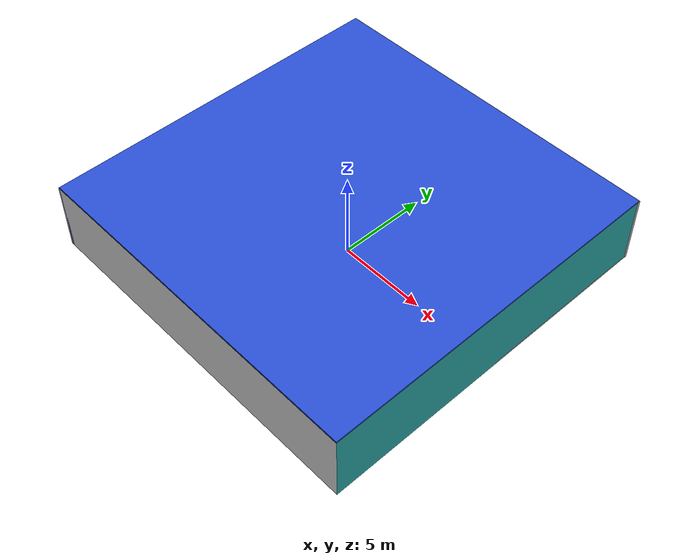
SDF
<sdf version="1.4">
 <world name="default">
  <physics type="ode">
   <max_step_size>0.001</max_step_size>
   <real_time_factor>1</real_time_factor>
   <real_time_update_rate>1000</real_time_update_rate>
   <gravity>0 0 -9.8</gravity>
  </physics>
  <scene><ambient>0.4 0.4 0.4 1</ambient><background>0.7 0.7 0.7 1</background><shadows>1</shadows></scene>
  <model name="Surrounding">
   <static>1</static>
   <link name="Ceiling">
    <collision name="Ceiling_Collision"><geometry><box><size>20 20 0.1</size></box></geometry></collision>
    <visual name="Ceiling_Visual">
     <geometry><box><size>20 20 0.1</size></box></geometry>
     <material>
      <script><uri>file://media/materials/scripts/gazebo.material</uri><name>Gazebo/BlueGlow</name></script>
     </material>
    </visual>
    <pose>0 0 4.05 0 0 0</pose>
   </link>
   <link name="Wall_South">
    <collision name="Wall_South_Collision">
     <geometry><box><size>20 0 4</size></box></geometry>
     <pose>0 0 2 0 -0 0</pose>
    </collision>
    <visual name="Wall_South_Visual">
     <pose>0 0 2 0 -0 0</pose>
     <geometry><box><size>20 0 4</size></box></geometry>
     <material>
      <script><uri>file://media/materials/scripts/gazebo.material</uri><name>Gazebo/WhiteGlow</name></script>
     </material>
    </visual>
    <velocity_decay><linear>0</linear><angular>0</angular></velocity_decay>
    <pose>0 -10 0 0 -0 0</pose>
   </link>
   <link name="Wall_East">
    <collision name="Wall_21_Collision">
     <geometry><box><size>20 0 4</size></box></geometry>
     <pose>0 0 2 0 -0 0</pose>
    </collision>
    <visual name="Wall_21_Visual">
     <pose>0 0 2 0 -0 0</pose>
     <geometry><box><size>20 0 4</size></box></geometry>
     <material>
      <script>
       <uri>file://media/materials/scripts/gazebo.material</uri>
       <name>Gazebo/TurquoiseGlowOutline</name>
      </script>
     </material>
    </visual>
    <velocity_decay><linear>0</linear><angular>0</angular></velocity_decay>
    <pose>10 0 0 0 -0 1.5708</pose>
   </link>
   <link name="Wall_North">
    <collision name="Wall_22_Collision">
     <geometry><box><size>20 0.2 4</size></box></geometry>
     <pose>0 0 2 0 -0 0</pose>
    </collision>
    <visual name="Wall_22_Visual">
     <pose>0 0 2 0 -0 0</pose>
     <geometry><box><size>20 0.2 4</size></box></geometry>
     <material>
      <script><uri>file://media/materials/scripts/gazebo.material</uri><name>Gazebo/LightOn</name></script>
     </material>
    </visual>
    <velocity_decay><linear>0</linear><angular>0</angular></velocity_decay>
    <pose>0 10 0 0 -0 0</pose>
   </link>
   <link name="Wall_West">
    <collision name="Wall_23_Collision">
     <geometry><box><size>20 0.2 4</size></box></geometry>
     <pose>0 0 2 0 -0 0</pose>
    </collision>
    <visual name="Wall_23_Visual">
     <pose>0 0 2 0 -0 0</pose>
     <geometry><box><size>20 0.2 4</size></box></geometry>
     <material>
      <script><uri>file://media/materials/scripts/gazebo.material</uri><name>Gazebo/BlueTransparent</name></script>
     </material>
    </visual>
    <velocity_decay><linear>0</linear><angular>0</angular></velocity_decay>
    <pose>-10 0 0 0 0 -1.5708</pose>
   </link>
   <link name="Ground_link">
    <collision name="collision">
     <pose>0 0 .05 0 -0 0</pose>
     <geometry><box><size>20 20 0.1</size></box></geometry>
    </collision>
    <visual name="visual">
     <pose>0 0 .05 0 -0 0</pose>
     <geometry><box><size>20 20 0.1</size></box></geometry>
     <material>
      <script><uri>file://media/materials/scripts/gazebo.material</uri><name>Gazebo/Pioneer2Body</name></script>
     </material>
    </visual>
   </link>
   <static>1</static>
  </model>
  <spherical_coordinates>
   <surface_model>EARTH_WGS84</surface_model>
   <latitude_deg>0</latitude_deg>
   <longitude_deg>0</longitude_deg>
   <elevation>0</elevation>
   <heading_deg>0</heading_deg>
  </spherical_coordinates>
  <light name="lightball_0" type="diffuse">
   <diffuse>0.8 0.8 0.8 1</diffuse>
   <specular>0.2 0.2 0.2 1</specular>
   <attenuation>
    <range>100</range>
    <constant>0.7</constant>
    <linear>0.01</linear>
    <quadratic>0.001</quadratic>
   </attenuation>
   <direction>-0.5 0.1 -0.9</direction>
   <pose>4.22140247659 9.40653851386 2.7158553991 0 0 0</pose>
  </light>
  <light name="lightball_1" type="diffuse">
   <diffuse>0.8 0.8 0.8 1</diffuse>
   <specular>0.2 0.2 0.2 1</specular>
   <attenuation>
    <range>100</range>
    <constant>0.7</constant>
    <linear>0.01</linear>
    <quadratic>0.001</quadratic>
   </attenuation>
   <direction>-0.5 0.1 -0.9</direction>
   <pose>-4.89263778275 1.21410305479 0.712642358398 0 0 0</pose>
  </light>
  <light name="lightball_2" type="diffuse">
   <diffuse>0.8 0.8 0.8 1</diffuse>
   <specular>0.2 0.2 0.2 1</specular>
   <attenuation>
    <range>100</range>
    <constant>0.7</constant>
    <linear>0.01</linear>
    <quadratic>0.001</quadratic>
   </attenuation>
   <direction>-0.5 0.1 -0.9</direction>
   <pose>4.76336098212 1.47483610854 3.06012367335 0 0 0</pose>
  </light>
  <include><uri>model://cabinet</uri><pose>5.172352631 -4.08938793851 0 0 0 2.54333608462</pose></include>
  <include>
   <uri>model://construction_cone</uri>
   <pose>6.46136690232 -6.7699937684 0 0 0 1.29890113666</pose>
  </include>
 </world>
</sdf>

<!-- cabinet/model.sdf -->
<sdf version="1.5">
  <model name="cabinet">
    <static>true</static>
    <link name="cabinet_bottom_plate">
      <inertial>
        <pose>0 0 -1 0 0 0</pose>
        <inertia>
          <ixx>2.050000</ixx>
          <ixy>0</ixy>
          <ixz>0</ixz>
          <iyy>2.050000</iyy>
          <iyz>0</iyz>
          <izz>2.050000</izz>
        </inertia>
        <mass>25.000000</mass>
      </inertial>
      <collision name="cabinet_bottom_plate_geom">
        <pose>0 0 0.010000 0 0 0</pose>
        <geometry>
          <box>
            <size>0.450000 0.450000 0.020000</size>
          </box>
        </geometry>
      </collision>
      <visual name="cabinet_bottom_plate_geom_visual">
        <pose>0 0 0.010000 0 0 0</pose>
        <geometry>
          <box>
            <size>0.450000 0.450000 0.020000</size>
          </box>
        </geometry>
        <material>
          <script>
            <uri>model://media/materials/scripts/gazebo.material</uri>
            <name>Gazebo/Wood</name>
          </script>
        </material>
      </visual>
      <collision name="cabinet_bottom_plate_geom_cabinet_back_plate">
        <pose>0.235000 0 0.510000 0 0 0</pose>
        <geometry>
          <box>
            <size>0.020000 0.450000 1.020000</size>
          </box>
        </geometry>
      </collision>
      <visual name="cabinet_bottom_plate_geom_cabinet_back_plate_visual">
        <pose>0.235000 0 0.510000 0 0 0</pose>
        <geometry>
          <box>
            <size>0.020000 0.450000 1.020000</size>
          </box>
        </geometry>
        <material>
          <script>
            <uri>model://media/materials/scripts/gazebo.material</uri>
            <name>Gazebo/Wood</name>
          </script>
        </material>
      </visual>
      <collision name="cabinet_bottom_plate_geom_cabinet_left_plate">
        <pose>0 0.235000 0.510000 0 0 0</pose>
        <geometry>
          <box>
            <size>0.450000 0.020000 1.020000</size>
          </box>
        </geometry>
      </collision>
      <visual name="cabinet_bottom_plate_geom_cabinet_left_plate_visual">
        <pose>0 0.235000 0.510000 0 0 0</pose>
        <geometry>
          <box>
            <size>0.450000 0.020000 1.020000</size>
          </box>
        </geometry>
        <material>
          <script>
            <uri>model://media/materials/scripts/gazebo.material</uri>
            <name>Gazebo/Wood</name>
          </script>
        </material>
      </visual>
      <collision name="cabinet_bottom_plate_geom_cabinet_middle_plate">
        <pose>0 0 0.510000 0 0 0</pose>
        <geometry>
          <box>
            <size>0.450000 0.450000 0.020000</size>
          </box>
        </geometry>
      </collision>
      <visual name="cabinet_bottom_plate_geom_cabinet_middle_plate_visual">
        <pose>0 0 0.510000 0 0 0</pose>
        <geometry>
          <box>
            <size>0.450000 0.450000 0.020000</size>
          </box>
        </geometry>
        <material>
          <script>
            <uri>model://media/materials/scripts/gazebo.material</uri>
            <name>Gazebo/Wood</name>
          </script>
        </material>
      </visual>
      <collision name="cabinet_bottom_plate_geom_cabinet_right_plate">
        <pose>0 -0.235000 0.510000 0 0 0</pose>
        <geometry>
          <box>
            <size>0.450000 0.020000 1.020000</size>
          </box>
        </geometry>
      </collision>
      <visual name="cabinet_bottom_plate_geom_cabinet_right_plate_visual">
        <pose>0 -0.235000 0.510000 0 0 0</pose>
        <geometry>
          <box>
            <size>0.450000 0.020000 1.020000</size>
          </box>
        </geometry>
        <material>
          <script>
            <uri>model://media/materials/scripts/gazebo.material</uri>
            <name>Gazebo/Wood</name>
          </script>
        </material>
      </visual>
      <collision name="cabinet_bottom_plate_geom_cabinet_top_plate">
        <pose>0 0 1.010000 0 0 0</pose>
        <geometry>
          <box>
            <size>0.450000 0.450000 0.020000</size>
          </box>
        </geometry>
      </collision>
      <visual name="cabinet_bottom_plate_geom_cabinet_top_plate_visual">
        <pose>0 0 1.010000 0 0 0</pose>
        <geometry>
          <box>
            <size>0.450000 0.450000 0.020000</size>
          </box>
        </geometry>
        <material>
          <script>
            <uri>model://media/materials/scripts/gazebo.material</uri>
            <name>Gazebo/Wood</name>
          </script>
        </material>
      </visual>
    </link>
  </model>
</sdf>

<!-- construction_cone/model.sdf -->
<sdf version="1.5">
  <model name="Construction Cone">
    <link name="link">
      <collision name="collision">
        <geometry>
          <mesh>
            <scale>10 10 10</scale>
            <uri>file://isr-testbed/construction_cone/meshes/construction_cone.dae</uri>
          </mesh>
        </geometry>
      </collision>
      <visual name="visual">
        <geometry>
          <mesh>
            <scale>10 10 10</scale>
            <uri>file://isr-testbed/construction_cone/meshes/construction_cone.dae</uri>
          </mesh>
        </geometry>
      </visual>
    </link>
  </model>
</sdf>
